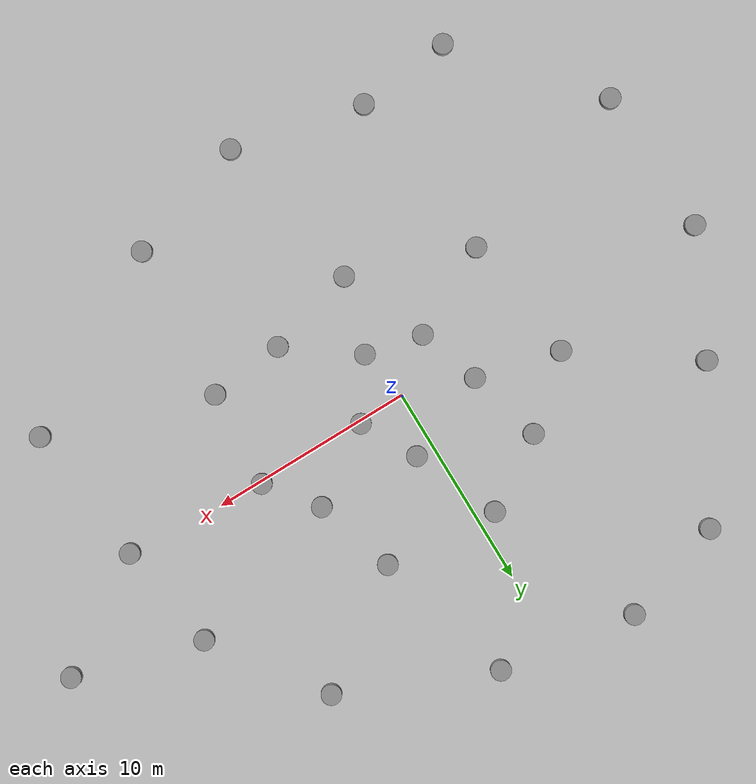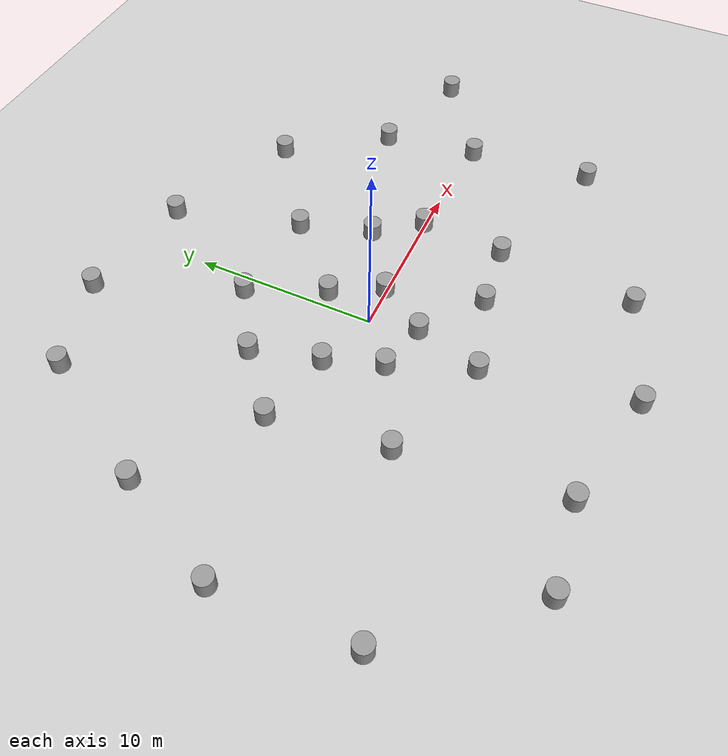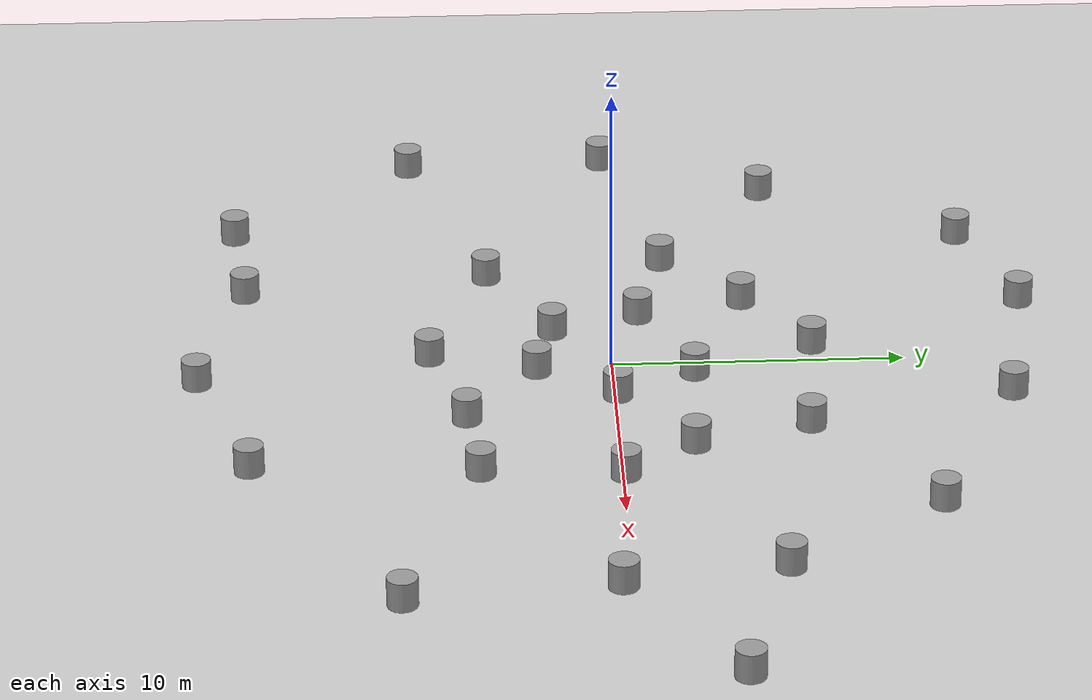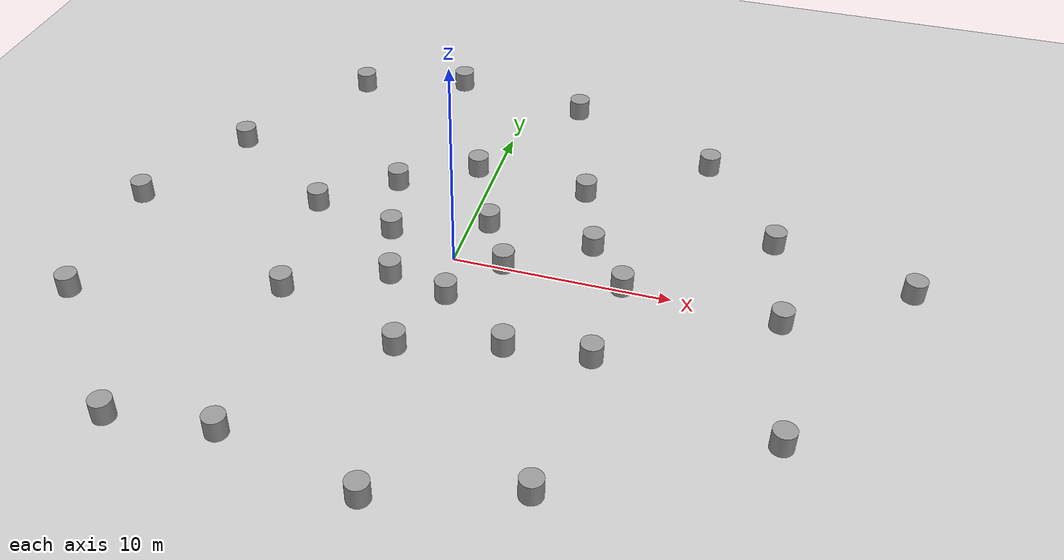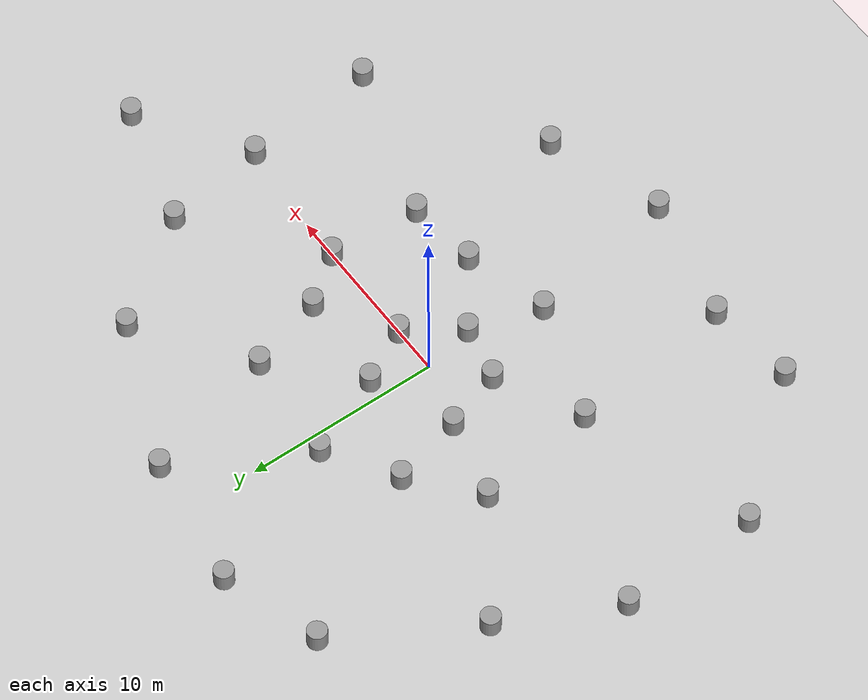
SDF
<sdf version="1.7">
 <world name="default">
  <light name="sun" type="directional">
   <pose>0 0 10 0 -0 0</pose>
   <diffuse>0.8 0.8 0.8 1</diffuse>
   <specular>0.2 0.2 0.2 1</specular>
   <attenuation>
    <range>1000</range>
    <constant>0.9</constant>
    <linear>0.01</linear>
    <quadratic>0.001</quadratic>
   </attenuation>
   <direction>-0.5 0.1 -0.9</direction>
   <spot><inner_angle>0</inner_angle><outer_angle>0</outer_angle><falloff>0</falloff></spot>
  </light>
  <model name="ground_plane">
   <static>1</static>
   <link name="link">
    <collision name="collision">
     <geometry><plane><normal>0 0 1</normal><size>100 100</size></plane></geometry>
     <surface>
      <contact><collide_bitmask>65535</collide_bitmask></contact>
      <friction><ode><mu>100</mu><mu2>50</mu2></ode></friction>
     </surface>
    </collision>
    <visual name="visual">
     <cast_shadows>0</cast_shadows>
     <geometry><plane><normal>0 0 1</normal><size>100 100</size></plane></geometry>
     <material>
      <script><uri>file://media/materials/scripts/gazebo.material</uri><name>Gazebo/Grey</name></script>
     </material>
    </visual>
   </link>
  </model>
  <gravity>0 0 -9.8</gravity>
  <magnetic_field>6e-06 2.3e-05 -4.2e-05</magnetic_field>
  <atmosphere type="adiabatic"/>
  <physics type="ode">
   <max_step_size>0.001</max_step_size>
   <real_time_factor>1</real_time_factor>
   <real_time_update_rate>1000</real_time_update_rate>
  </physics>
  <scene><ambient>0.4 0.4 0.4 1</ambient><background>0.7 0.7 0.7 1</background><shadows>1</shadows></scene>
  <spherical_coordinates>
   <surface_model>EARTH_WGS84</surface_model>
   <latitude_deg>0</latitude_deg>
   <longitude_deg>0</longitude_deg>
   <elevation>0</elevation>
   <heading_deg>0</heading_deg>
  </spherical_coordinates>
  <model name="unit_cylinder">
   <pose>2.3231 0.104817 0.499997 4e-06 3e-06 -0</pose>
   <link name="link">
    <inertial>
     <mass>1</mass>
     <inertia><ixx>0.145833</ixx><ixy>0</ixy><ixz>0</ixz><iyy>0.145833</iyy><iyz>0</iyz><izz>0.125</izz></inertia>
    </inertial>
    <collision name="collision">
     <geometry><cylinder><radius>0.5</radius><length>1</length></cylinder></geometry>
    </collision>
    <visual name="visual">
     <geometry><cylinder><radius>0.5</radius><length>1</length></cylinder></geometry>
     <material>
      <script><name>Gazebo/Grey</name><uri>file://media/materials/scripts/gazebo.material</uri></script>
     </material>
    </visual>
   </link>
  </model>
  <model name="unit_cylinder_0">
   <pose>0.869542 2.78394 0.499997 4e-06 3e-06 -0</pose>
   <link name="link">
    <inertial>
     <mass>1</mass>
     <inertia><ixx>0.145833</ixx><ixy>0</ixy><ixz>0</ixz><iyy>0.145833</iyy><iyz>0</iyz><izz>0.125</izz></inertia>
    </inertial>
    <collision name="collision">
     <geometry><cylinder><radius>0.5</radius><length>1</length></cylinder></geometry>
    </collision>
    <visual name="visual">
     <geometry><cylinder><radius>0.5</radius><length>1</length></cylinder></geometry>
     <material>
      <script><name>Gazebo/Grey</name><uri>file://media/materials/scripts/gazebo.material</uri></script>
     </material>
    </visual>
   </link>
  </model>
  <model name="unit_cylinder_1">
   <pose>-3.37856 1.06309 0.499994 -4e-06 -3e-06 -0</pose>
   <link name="link">
    <inertial>
     <mass>1</mass>
     <inertia><ixx>0.145833</ixx><ixy>0</ixy><ixz>0</ixz><iyy>0.145833</iyy><iyz>0</iyz><izz>0.125</izz></inertia>
    </inertial>
    <collision name="collision">
     <geometry><cylinder><radius>0.5</radius><length>1</length></cylinder></geometry>
    </collision>
    <visual name="visual">
     <geometry><cylinder><radius>0.5</radius><length>1</length></cylinder></geometry>
     <material>
      <script><name>Gazebo/Grey</name><uri>file://media/materials/scripts/gazebo.material</uri></script>
     </material>
    </visual>
   </link>
  </model>
  <model name="unit_cylinder_2">
   <pose>-2.34223 -1.95131 0.499994 -4e-06 -4e-06 -0</pose>
   <link name="link">
    <inertial>
     <mass>1</mass>
     <inertia><ixx>0.145833</ixx><ixy>0</ixy><ixz>0</ixz><iyy>0.145833</iyy><iyz>0</iyz><izz>0.125</izz></inertia>
    </inertial>
    <collision name="collision">
     <geometry><cylinder><radius>0.5</radius><length>1</length></cylinder></geometry>
    </collision>
    <visual name="visual">
     <geometry><cylinder><radius>0.5</radius><length>1</length></cylinder></geometry>
     <material>
      <script><name>Gazebo/Grey</name><uri>file://media/materials/scripts/gazebo.material</uri></script>
     </material>
    </visual>
   </link>
  </model>
  <model name="unit_cylinder_3">
   <pose>0.467202 -2.57719 0.499997 4e-06 4e-06 -0</pose>
   <link name="link">
    <inertial>
     <mass>1</mass>
     <inertia><ixx>0.145833</ixx><ixy>0</ixy><ixz>0</ixz><iyy>0.145833</iyy><iyz>0</iyz><izz>0.125</izz></inertia>
    </inertial>
    <collision name="collision">
     <geometry><cylinder><radius>0.5</radius><length>1</length></cylinder></geometry>
    </collision>
    <visual name="visual">
     <geometry><cylinder><radius>0.5</radius><length>1</length></cylinder></geometry>
     <material>
      <script><name>Gazebo/Grey</name><uri>file://media/materials/scripts/gazebo.material</uri></script>
     </material>
    </visual>
   </link>
  </model>
  <model name="unit_cylinder_4">
   <pose>7.77839 0.088414 0.499992 -3e-06 -4e-06 -0</pose>
   <link name="link">
    <inertial>
     <mass>1</mass>
     <inertia><ixx>0.145833</ixx><ixy>0</ixy><ixz>0</ixz><iyy>0.145833</iyy><iyz>0</iyz><izz>0.125</izz></inertia>
    </inertial>
    <collision name="collision">
     <geometry><cylinder><radius>0.5</radius><length>1</length></cylinder></geometry>
    </collision>
    <visual name="visual">
     <geometry><cylinder><radius>0.5</radius><length>1</length></cylinder></geometry>
     <material>
      <script><name>Gazebo/Grey</name><uri>file://media/materials/scripts/gazebo.material</uri></script>
     </material>
    </visual>
   </link>
  </model>
  <model name="unit_cylinder_5">
   <pose>5.93617 2.49385 0.499998 3e-06 4e-06 -0</pose>
   <link name="link">
    <inertial>
     <mass>1</mass>
     <inertia><ixx>0.145833</ixx><ixy>0</ixy><ixz>0</ixz><iyy>0.145833</iyy><iyz>0</iyz><izz>0.125</izz></inertia>
    </inertial>
    <collision name="collision">
     <geometry><cylinder><radius>0.5</radius><length>1</length></cylinder></geometry>
    </collision>
    <visual name="visual">
     <geometry><cylinder><radius>0.5</radius><length>1</length></cylinder></geometry>
     <material>
      <script><name>Gazebo/Grey</name><uri>file://media/materials/scripts/gazebo.material</uri></script>
     </material>
    </visual>
   </link>
  </model>
  <model name="unit_cylinder_6">
   <pose>4.70221 6.43 0.499998 3e-06 4e-06 -0</pose>
   <link name="link">
    <inertial>
     <mass>1</mass>
     <inertia><ixx>0.145833</ixx><ixy>0</ixy><ixz>0</ixz><iyy>0.145833</iyy><iyz>0</iyz><izz>0.125</izz></inertia>
    </inertial>
    <collision name="collision">
     <geometry><cylinder><radius>0.5</radius><length>1</length></cylinder></geometry>
    </collision>
    <visual name="visual">
     <geometry><cylinder><radius>0.5</radius><length>1</length></cylinder></geometry>
     <material>
      <script><name>Gazebo/Grey</name><uri>file://media/materials/scripts/gazebo.material</uri></script>
     </material>
    </visual>
   </link>
  </model>
  <model name="unit_cylinder_10">
   <pose>3.7718 -5.01874 0.499994 -4e-06 -4e-06 -0</pose>
   <link name="link">
    <inertial>
     <mass>1</mass>
     <inertia><ixx>0.145833</ixx><ixy>0</ixy><ixz>0</ixz><iyy>0.145833</iyy><iyz>0</iyz><izz>0.125</izz></inertia>
    </inertial>
    <collision name="collision">
     <geometry><cylinder><radius>0.5</radius><length>1</length></cylinder></geometry>
    </collision>
    <visual name="visual">
     <geometry><cylinder><radius>0.5</radius><length>1</length></cylinder></geometry>
     <material>
      <script><name>Gazebo/Grey</name><uri>file://media/materials/scripts/gazebo.material</uri></script>
     </material>
    </visual>
   </link>
  </model>
  <model name="unit_cylinder_12">
   <pose>7.46125 -4.63129 0.499998 3e-06 -2e-06 0</pose>
   <link name="link">
    <inertial>
     <mass>1</mass>
     <inertia><ixx>0.145833</ixx><ixy>0</ixy><ixz>0</ixz><iyy>0.145833</iyy><iyz>0</iyz><izz>0.125</izz></inertia>
    </inertial>
    <collision name="collision">
     <geometry><cylinder><radius>0.5</radius><length>1</length></cylinder></geometry>
    </collision>
    <visual name="visual">
     <geometry><cylinder><radius>0.5</radius><length>1</length></cylinder></geometry>
     <material>
      <script><name>Gazebo/Grey</name><uri>file://media/materials/scripts/gazebo.material</uri></script>
     </material>
    </visual>
   </link>
  </model>
  <model name="unit_cylinder_13">
   <pose>-0.608804 -6.21816 0.499998 3e-06 -2e-06 0</pose>
   <link name="link">
    <inertial>
     <mass>1</mass>
     <inertia><ixx>0.145833</ixx><ixy>0</ixy><ixz>0</ixz><iyy>0.145833</iyy><iyz>0</iyz><izz>0.125</izz></inertia>
    </inertial>
    <collision name="collision">
     <geometry><cylinder><radius>0.5</radius><length>1</length></cylinder></geometry>
    </collision>
    <visual name="visual">
     <geometry><cylinder><radius>0.5</radius><length>1</length></cylinder></geometry>
     <material>
      <script><name>Gazebo/Grey</name><uri>file://media/materials/scripts/gazebo.material</uri></script>
     </material>
    </visual>
   </link>
  </model>
  <model name="unit_cylinder_7">
   <pose>-4.36387 4.74452 0.499998 3e-06 -2e-06 0</pose>
   <link name="link">
    <inertial>
     <mass>1</mass>
     <inertia><ixx>0.145833</ixx><ixy>0</ixy><ixz>0</ixz><iyy>0.145833</iyy><iyz>0</iyz><izz>0.125</izz></inertia>
    </inertial>
    <collision name="collision">
     <geometry><cylinder><radius>0.5</radius><length>1</length></cylinder></geometry>
    </collision>
    <visual name="visual">
     <geometry><cylinder><radius>0.5</radius><length>1</length></cylinder></geometry>
     <material>
      <script><name>Gazebo/Grey</name><uri>file://media/materials/scripts/gazebo.material</uri></script>
     </material>
    </visual>
   </link>
  </model>
  <model name="unit_cylinder_8">
   <pose>-7.50059 2.07941 0.499998 3e-06 -3e-06 0</pose>
   <link name="link">
    <inertial>
     <mass>1</mass>
     <inertia><ixx>0.145833</ixx><ixy>0</ixy><ixz>0</ixz><iyy>0.145833</iyy><iyz>0</iyz><izz>0.125</izz></inertia>
    </inertial>
    <collision name="collision">
     <geometry><cylinder><radius>0.5</radius><length>1</length></cylinder></geometry>
    </collision>
    <visual name="visual">
     <geometry><cylinder><radius>0.5</radius><length>1</length></cylinder></geometry>
     <material>
      <script><name>Gazebo/Grey</name><uri>file://media/materials/scripts/gazebo.material</uri></script>
     </material>
    </visual>
   </link>
  </model>
  <model name="unit_cylinder_9">
   <pose>-0.89983 6.92485 0.499993 -3e-06 3e-06 0</pose>
   <link name="link">
    <inertial>
     <mass>1</mass>
     <inertia><ixx>0.145833</ixx><ixy>0</ixy><ixz>0</ixz><iyy>0.145833</iyy><iyz>0</iyz><izz>0.125</izz></inertia>
    </inertial>
    <collision name="collision">
     <geometry><cylinder><radius>0.5</radius><length>1</length></cylinder></geometry>
    </collision>
    <visual name="visual">
     <geometry><cylinder><radius>0.5</radius><length>1</length></cylinder></geometry>
     <material>
      <script><name>Gazebo/Grey</name><uri>file://media/materials/scripts/gazebo.material</uri></script>
     </material>
    </visual>
   </link>
  </model>
  <model name="unit_cylinder_11">
   <pose>-6.62892 -4.1499 0.499998 3e-06 -3e-06 0</pose>
   <link name="link">
    <inertial>
     <mass>1</mass>
     <inertia><ixx>0.145833</ixx><ixy>0</ixy><ixz>0</ixz><iyy>0.145833</iyy><iyz>0</iyz><izz>0.125</izz></inertia>
    </inertial>
    <collision name="collision">
     <geometry><cylinder><radius>0.5</radius><length>1</length></cylinder></geometry>
    </collision>
    <visual name="visual">
     <geometry><cylinder><radius>0.5</radius><length>1</length></cylinder></geometry>
     <material>
      <script><name>Gazebo/Grey</name><uri>file://media/materials/scripts/gazebo.material</uri></script>
     </material>
    </visual>
   </link>
  </model>
  <model name="unit_cylinder_14">
   <pose>14.7796 -0.339529 0.499992 -3e-06 3e-06 0</pose>
   <link name="link">
    <inertial>
     <mass>1</mass>
     <inertia><ixx>0.145833</ixx><ixy>0</ixy><ixz>0</ixz><iyy>0.145833</iyy><iyz>0</iyz><izz>0.125</izz></inertia>
    </inertial>
    <collision name="collision">
     <geometry><cylinder><radius>0.5</radius><length>1</length></cylinder></geometry>
    </collision>
    <visual name="visual">
     <geometry><cylinder><radius>0.5</radius><length>1</length></cylinder></geometry>
     <material>
      <script><name>Gazebo/Grey</name><uri>file://media/materials/scripts/gazebo.material</uri></script>
     </material>
    </visual>
   </link>
  </model>
  <model name="unit_cylinder_15">
   <pose>13.9172 4.96068 0.499998 3e-06 -3e-06 0</pose>
   <link name="link">
    <inertial>
     <mass>1</mass>
     <inertia><ixx>0.145833</ixx><ixy>0</ixy><ixz>0</ixz><iyy>0.145833</iyy><iyz>0</iyz><izz>0.125</izz></inertia>
    </inertial>
    <collision name="collision">
     <geometry><cylinder><radius>0.5</radius><length>1</length></cylinder></geometry>
    </collision>
    <visual name="visual">
     <geometry><cylinder><radius>0.5</radius><length>1</length></cylinder></geometry>
     <material>
      <script><name>Gazebo/Grey</name><uri>file://media/materials/scripts/gazebo.material</uri></script>
     </material>
    </visual>
   </link>
  </model>
  <model name="unit_cylinder_16">
   <pose>15.5294 -7.225 0.499998 3e-06 -3e-06 0</pose>
   <link name="link">
    <inertial>
     <mass>1</mass>
     <inertia><ixx>0.145833</ixx><ixy>0</ixy><ixz>0</ixz><iyy>0.145833</iyy><iyz>0</iyz><izz>0.125</izz></inertia>
    </inertial>
    <collision name="collision">
     <geometry><cylinder><radius>0.5</radius><length>1</length></cylinder></geometry>
    </collision>
    <visual name="visual">
     <geometry><cylinder><radius>0.5</radius><length>1</length></cylinder></geometry>
     <material>
      <script><name>Gazebo/Grey</name><uri>file://media/materials/scripts/gazebo.material</uri></script>
     </material>
    </visual>
   </link>
  </model>
  <model name="unit_cylinder_17">
   <pose>6.8993 -12.1826 0.499998 3e-06 -3e-06 0</pose>
   <link name="link">
    <inertial>
     <mass>1</mass>
     <inertia><ixx>0.145833</ixx><ixy>0</ixy><ixz>0</ixz><iyy>0.145833</iyy><iyz>0</iyz><izz>0.125</izz></inertia>
    </inertial>
    <collision name="collision">
     <geometry><cylinder><radius>0.5</radius><length>1</length></cylinder></geometry>
    </collision>
    <visual name="visual">
     <geometry><cylinder><radius>0.5</radius><length>1</length></cylinder></geometry>
     <material>
      <script><name>Gazebo/Grey</name><uri>file://media/materials/scripts/gazebo.material</uri></script>
     </material>
    </visual>
   </link>
  </model>
  <model name="unit_cylinder_18">
   <pose>-5.62743 -12.6484 0.499998 3e-06 -4e-06 0</pose>
   <link name="link">
    <inertial>
     <mass>1</mass>
     <inertia><ixx>0.145833</ixx><ixy>0</ixy><ixz>0</ixz><iyy>0.145833</iyy><iyz>0</iyz><izz>0.125</izz></inertia>
    </inertial>
    <collision name="collision">
     <geometry><cylinder><radius>0.5</radius><length>1</length></cylinder></geometry>
    </collision>
    <visual name="visual">
     <geometry><cylinder><radius>0.5</radius><length>1</length></cylinder></geometry>
     <material>
      <script><name>Gazebo/Grey</name><uri>file://media/materials/scripts/gazebo.material</uri></script>
     </material>
    </visual>
   </link>
  </model>
  <model name="unit_cylinder_19">
   <pose>-15.6659 -6.8498 0.499998 3e-06 -4e-06 0</pose>
   <link name="link">
    <inertial>
     <mass>1</mass>
     <inertia><ixx>0.145833</ixx><ixy>0</ixy><ixz>0</ixz><iyy>0.145833</iyy><iyz>0</iyz><izz>0.125</izz></inertia>
    </inertial>
    <collision name="collision">
     <geometry><cylinder><radius>0.5</radius><length>1</length></cylinder></geometry>
    </collision>
    <visual name="visual">
     <geometry><cylinder><radius>0.5</radius><length>1</length></cylinder></geometry>
     <material>
      <script><name>Gazebo/Grey</name><uri>file://media/materials/scripts/gazebo.material</uri></script>
     </material>
    </visual>
   </link>
  </model>
  <model name="unit_cylinder_20">
   <pose>-15.9562 0.313164 0.499992 -3e-06 4e-06 0</pose>
   <link name="link">
    <inertial>
     <mass>1</mass>
     <inertia><ixx>0.145833</ixx><ixy>0</ixy><ixz>0</ixz><iyy>0.145833</iyy><iyz>0</iyz><izz>0.125</izz></inertia>
    </inertial>
    <collision name="collision">
     <geometry><cylinder><radius>0.5</radius><length>1</length></cylinder></geometry>
    </collision>
    <visual name="visual">
     <geometry><cylinder><radius>0.5</radius><length>1</length></cylinder></geometry>
     <material>
      <script><name>Gazebo/Grey</name><uri>file://media/materials/scripts/gazebo.material</uri></script>
     </material>
    </visual>
   </link>
  </model>
  <model name="unit_cylinder_21">
   <pose>-13.1234 6.04701 0.499998 3e-06 -4e-06 0</pose>
   <link name="link">
    <inertial>
     <mass>1</mass>
     <inertia><ixx>0.145833</ixx><ixy>0</ixy><ixz>0</ixz><iyy>0.145833</iyy><iyz>0</iyz><izz>0.125</izz></inertia>
    </inertial>
    <collision name="collision">
     <geometry><cylinder><radius>0.5</radius><length>1</length></cylinder></geometry>
    </collision>
    <visual name="visual">
     <geometry><cylinder><radius>0.5</radius><length>1</length></cylinder></geometry>
     <material>
      <script><name>Gazebo/Grey</name><uri>file://media/materials/scripts/gazebo.material</uri></script>
     </material>
    </visual>
   </link>
  </model>
  <model name="unit_cylinder_22">
   <pose>-9.12049 12.8766 0.499998 3e-06 -4e-06 0</pose>
   <link name="link">
    <inertial>
     <mass>1</mass>
     <inertia><ixx>0.145833</ixx><ixy>0</ixy><ixz>0</ixz><iyy>0.145833</iyy><iyz>0</iyz><izz>0.125</izz></inertia>
    </inertial>
    <collision name="collision">
     <geometry><cylinder><radius>0.5</radius><length>1</length></cylinder></geometry>
    </collision>
    <visual name="visual">
     <geometry><cylinder><radius>0.5</radius><length>1</length></cylinder></geometry>
     <material>
      <script><name>Gazebo/Grey</name><uri>file://media/materials/scripts/gazebo.material</uri></script>
     </material>
    </visual>
   </link>
  </model>
  <model name="unit_cylinder_23">
   <pose>2.74405 13.4394 0.499992 -3e-06 4e-06 0</pose>
   <link name="link">
    <inertial>
     <mass>1</mass>
     <inertia><ixx>0.145833</ixx><ixy>0</ixy><ixz>0</ixz><iyy>0.145833</iyy><iyz>0</iyz><izz>0.125</izz></inertia>
    </inertial>
    <collision name="collision">
     <geometry><cylinder><radius>0.5</radius><length>1</length></cylinder></geometry>
    </collision>
    <visual name="visual">
     <geometry><cylinder><radius>0.5</radius><length>1</length></cylinder></geometry>
     <material>
      <script><name>Gazebo/Grey</name><uri>file://media/materials/scripts/gazebo.material</uri></script>
     </material>
    </visual>
   </link>
  </model>
  <model name="unit_cylinder_24">
   <pose>-3.98704 14.4789 0.499998 3e-06 4e-06 -0</pose>
   <link name="link">
    <inertial>
     <mass>1</mass>
     <inertia><ixx>0.145833</ixx><ixy>0</ixy><ixz>0</ixz><iyy>0.145833</iyy><iyz>0</iyz><izz>0.125</izz></inertia>
    </inertial>
    <collision name="collision">
     <geometry><cylinder><radius>0.5</radius><length>1</length></cylinder></geometry>
    </collision>
    <visual name="visual">
     <geometry><cylinder><radius>0.5</radius><length>1</length></cylinder></geometry>
     <material>
      <script><name>Gazebo/Grey</name><uri>file://media/materials/scripts/gazebo.material</uri></script>
     </material>
    </visual>
   </link>
  </model>
  <model name="unit_cylinder_25">
   <pose>10.1456 10.2615 0.499993 -3e-06 -3e-06 0</pose>
   <link name="link">
    <inertial>
     <mass>1</mass>
     <inertia><ixx>0.145833</ixx><ixy>0</ixy><ixz>0</ixz><iyy>0.145833</iyy><iyz>0</iyz><izz>0.125</izz></inertia>
    </inertial>
    <collision name="collision">
     <geometry><cylinder><radius>0.5</radius><length>1</length></cylinder></geometry>
    </collision>
    <visual name="visual">
     <geometry><cylinder><radius>0.5</radius><length>1</length></cylinder></geometry>
     <material>
      <script><name>Gazebo/Grey</name><uri>file://media/materials/scripts/gazebo.material</uri></script>
     </material>
    </visual>
   </link>
  </model>
  <model name="unit_cylinder_26">
   <pose>-10.2651 -13.1311 0.499997 3e-06 4e-06 -0</pose>
   <link name="link">
    <inertial>
     <mass>1</mass>
     <inertia><ixx>0.145833</ixx><ixy>0</ixy><ixz>0</ixz><iyy>0.145833</iyy><iyz>0</iyz><izz>0.125</izz></inertia>
    </inertial>
    <collision name="collision">
     <geometry><cylinder><radius>0.5</radius><length>1</length></cylinder></geometry>
    </collision>
    <visual name="visual">
     <geometry><cylinder><radius>0.5</radius><length>1</length></cylinder></geometry>
     <material>
      <script><name>Gazebo/Grey</name><uri>file://media/materials/scripts/gazebo.material</uri></script>
     </material>
    </visual>
   </link>
  </model>
  <model name="unit_cylinder_27">
   <pose>0.835909 -14.1116 0.499993 -3e-06 -4e-06 -0</pose>
   <link name="link">
    <inertial>
     <mass>1</mass>
     <inertia><ixx>0.145833</ixx><ixy>0</ixy><ixz>0</ixz><iyy>0.145833</iyy><iyz>0</iyz><izz>0.125</izz></inertia>
    </inertial>
    <collision name="collision">
     <geometry><cylinder><radius>0.5</radius><length>1</length></cylinder></geometry>
    </collision>
    <visual name="visual">
     <geometry><cylinder><radius>0.5</radius><length>1</length></cylinder></geometry>
     <material>
      <script><name>Gazebo/Grey</name><uri>file://media/materials/scripts/gazebo.material</uri></script>
     </material>
    </visual>
   </link>
  </model>
  <model name="unit_cylinder_28">
   <pose>20.1726 3.19993 0.499997 3e-06 4e-06 -0</pose>
   <link name="link">
    <inertial>
     <mass>1</mass>
     <inertia><ixx>0.145833</ixx><ixy>0</ixy><ixz>0</ixz><iyy>0.145833</iyy><iyz>0</iyz><izz>0.125</izz></inertia>
    </inertial>
    <collision name="collision">
     <geometry><cylinder><radius>0.5</radius><length>1</length></cylinder></geometry>
    </collision>
    <visual name="visual">
     <geometry><cylinder><radius>0.5</radius><length>1</length></cylinder></geometry>
     <material>
      <script><name>Gazebo/Grey</name><uri>file://media/materials/scripts/gazebo.material</uri></script>
     </material>
    </visual>
   </link>
  </model>
 </world>
</sdf>
